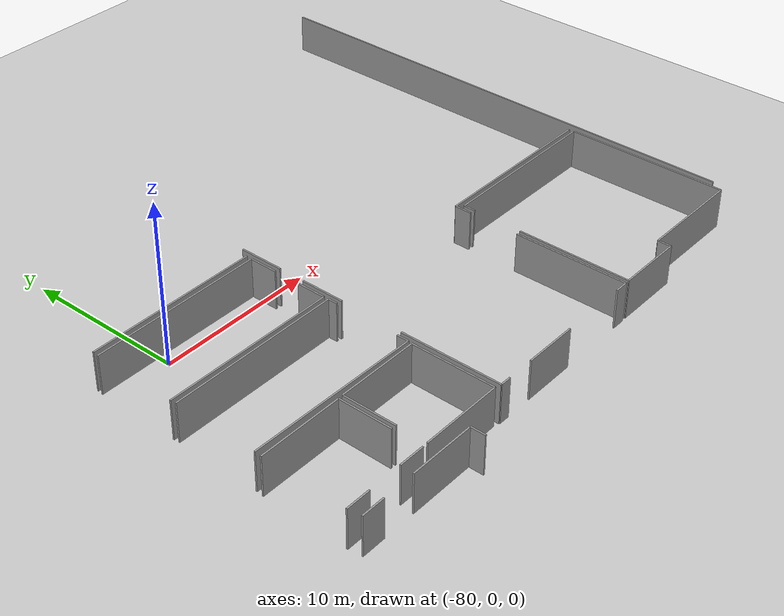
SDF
<sdf version="1.6">
 <world name="default">
  <model name="ground_plane">
   <static>1</static>
   <link name="link">
    <collision name="collision">
     <geometry><plane><normal>0 0 1</normal><size>100 100</size></plane></geometry>
     <surface><friction><ode><mu>100</mu><mu2>50</mu2></ode></friction></surface>
    </collision>
    <visual name="visual">
     <cast_shadows>0</cast_shadows>
     <geometry><plane><normal>0 0 1</normal><size>100 100</size></plane></geometry>
     <material>
      <script><uri>file://media/materials/scripts/gazebo.material</uri><name>Gazebo/Grey</name></script>
     </material>
    </visual>
   </link>
  </model>
  <model name="0510045904_A_40_1_102">
   <static>1</static>
   <link name="Wall_0">
    <collision name="Wall_0_Collision">
     <geometry><box><size>0.837914354996 0.1 2.5</size></box></geometry>
     <pose>0.418957177498 0 1.25 0 0 0</pose>
    </collision>
    <visual name="Wall_0_Visual">
     <pose>0.418957177498 0 1.25 0 0 0</pose>
     <geometry><box><size>0.837914354996 0.1 2.5</size></box></geometry>
     <material>
      <script><uri>file://media/materials/scripts/gazebo.material</uri><name>Gazebo/Grey</name></script>
      <ambient>1 1 1 1</ambient>
     </material>
    </visual>
    <pose>22.6153084414 -78.1271344599 0 0 0 3.14159265359</pose>
   </link>
   <link name="Wall_1">
    <collision name="Wall_1_Collision">
     <geometry><box><size>3.37806441784 0.1 2.5</size></box></geometry>
     <pose>1.68903220892 0 1.25 0 0 0</pose>
    </collision>
    <visual name="Wall_1_Visual">
     <pose>1.68903220892 0 1.25 0 0 0</pose>
     <geometry><box><size>3.37806441784 0.1 2.5</size></box></geometry>
     <material>
      <script><uri>file://media/materials/scripts/gazebo.material</uri><name>Gazebo/Grey</name></script>
      <ambient>1 1 1 1</ambient>
     </material>
    </visual>
    <pose>17.4994604339 -78.1271344599 0 0 0 3.14159265359</pose>
   </link>
   <link name="Wall_2">
    <collision name="Wall_2_Collision">
     <geometry><box><size>0.685566290452 0.1 2.5</size></box></geometry>
     <pose>0.342783145226 0 1.25 0 0 0</pose>
    </collision>
    <visual name="Wall_2_Visual">
     <pose>0.342783145226 0 1.25 0 0 0</pose>
     <geometry><box><size>0.685566290452 0.1 2.5</size></box></geometry>
     <material>
      <script><uri>file://media/materials/scripts/gazebo.material</uri><name>Gazebo/Grey</name></script>
      <ambient>1 1 1 1</ambient>
     </material>
    </visual>
    <pose>12.4079881169 -78.1271344599 0 0 0 3.14159265359</pose>
   </link>
   <link name="Wall_3">
    <collision name="Wall_3_Collision">
     <geometry><box><size>6.29933855549 0.1 2.5</size></box></geometry>
     <pose>3.14966927774 0 1.25 0 0 0</pose>
    </collision>
    <visual name="Wall_3_Visual">
     <pose>3.14966927774 0 1.25 0 0 0</pose>
     <geometry><box><size>6.29933855549 0.1 2.5</size></box></geometry>
     <material>
      <script><uri>file://media/materials/scripts/gazebo.material</uri><name>Gazebo/Grey</name></script>
      <ambient>1 1 1 1</ambient>
     </material>
    </visual>
    <pose>11.7224218264 -78.1271344599 0 0 0 1.57079632679</pose>
   </link>
   <link name="Wall_4">
    <collision name="Wall_4_Collision">
     <geometry><box><size>2.73210862417 0.1 2.5</size></box></geometry>
     <pose>1.36605431209 0 1.25 0 0 0</pose>
    </collision>
    <visual name="Wall_4_Visual">
     <pose>1.36605431209 0 1.25 0 0 0</pose>
     <geometry><box><size>2.73210862417 0.1 2.5</size></box></geometry>
     <material>
      <script><uri>file://media/materials/scripts/gazebo.material</uri><name>Gazebo/Grey</name></script>
      <ambient>1 1 1 1</ambient>
     </material>
    </visual>
    <pose>11.7224218264 -67.818248759 0 0 0 1.57079632679</pose>
   </link>
   <link name="Wall_5">
    <collision name="Wall_5_Collision">
     <geometry><box><size>2.78390696612 0.1 2.5</size></box></geometry>
     <pose>1.39195348306 0 1.25 0 0 0</pose>
    </collision>
    <visual name="Wall_5_Visual">
     <pose>1.39195348306 0 1.25 0 0 0</pose>
     <geometry><box><size>2.78390696612 0.1 2.5</size></box></geometry>
     <material>
      <script><uri>file://media/materials/scripts/gazebo.material</uri><name>Gazebo/Grey</name></script>
      <ambient>1 1 1 1</ambient>
     </material>
    </visual>
    <pose>11.7224218264 -63.4349410286 0 0 0 1.57079632679</pose>
   </link>
   <link name="Wall_15">
    <collision name="Wall_15_Collision">
     <geometry><box><size>11.1368974317 0.1 2.5</size></box></geometry>
     <pose>5.56844871583 0 1.25 0 0 0</pose>
    </collision>
    <visual name="Wall_15_Visual">
     <pose>5.56844871583 0 1.25 0 0 0</pose>
     <geometry><box><size>11.1368974317 0.1 2.5</size></box></geometry>
     <material>
      <script><uri>file://media/materials/scripts/gazebo.material</uri><name>Gazebo/Grey</name></script>
      <ambient>1 1 1 1</ambient>
     </material>
    </visual>
    <pose>33.7011692714 -66.7949775921 0 0 0 3.14159265359</pose>
   </link>
   <link name="Wall_16">
    <collision name="Wall_16_Collision">
     <geometry><box><size>1.05602600074 0.1 2.5</size></box></geometry>
     <pose>0.528013000368 0 1.25 0 0 0</pose>
    </collision>
    <visual name="Wall_16_Visual">
     <pose>0.528013000368 0 1.25 0 0 0</pose>
     <geometry><box><size>1.05602600074 0.1 2.5</size></box></geometry>
     <material>
      <script><uri>file://media/materials/scripts/gazebo.material</uri><name>Gazebo/Grey</name></script>
      <ambient>1 1 1 1</ambient>
     </material>
    </visual>
    <pose>22.5642718397 -66.7949775921 0 0 0 -1.57079632679</pose>
   </link>
   <link name="Wall_17">
    <collision name="Wall_17_Collision">
     <geometry><box><size>7.06761098928 0.1 2.5</size></box></geometry>
     <pose>3.53380549464 0 1.25 0 0 0</pose>
    </collision>
    <visual name="Wall_17_Visual">
     <pose>3.53380549464 0 1.25 0 0 0</pose>
     <geometry><box><size>7.06761098928 0.1 2.5</size></box></geometry>
     <material>
      <script><uri>file://media/materials/scripts/gazebo.material</uri><name>Gazebo/Grey</name></script>
      <ambient>1 1 1 1</ambient>
     </material>
    </visual>
    <pose>22.5642718397 -71.0597077456 0 0 0 -1.5635750684</pose>
   </link>
   <link name="Wall_41">
    <collision name="Wall_41_Collision">
     <geometry><box><size>10.8672413574 0.1 2.5</size></box></geometry>
     <pose>5.43362067871 0 1.25 0 0 0</pose>
    </collision>
    <visual name="Wall_41_Visual">
     <pose>5.43362067871 0 1.25 0 0 0</pose>
     <geometry><box><size>10.8672413574 0.1 2.5</size></box></geometry>
     <material>
      <script><uri>file://media/materials/scripts/gazebo.material</uri><name>Gazebo/Grey</name></script>
      <ambient>1 1 1 1</ambient>
     </material>
    </visual>
    <pose>11.4093465538 -61.2665202432 0 0 0 3.14159265359</pose>
   </link>
   <link name="Wall_45">
    <collision name="Wall_45_Collision">
     <geometry><box><size>1.81040283367 0.1 2.5</size></box></geometry>
     <pose>0.905201416837 0 1.25 0 0 0</pose>
    </collision>
    <visual name="Wall_45_Visual">
     <pose>0.905201416837 0 1.25 0 0 0</pose>
     <geometry><box><size>1.81040283367 0.1 2.5</size></box></geometry>
     <material>
      <script><uri>file://media/materials/scripts/gazebo.material</uri><name>Gazebo/Grey</name></script>
      <ambient>1 1 1 1</ambient>
     </material>
    </visual>
    <pose>11.3834473828 -66.8764838067 0 0 0 1.57079632679</pose>
   </link>
   <link name="Wall_46">
    <collision name="Wall_46_Collision">
     <geometry><box><size>1.76622189496 0.1 2.5</size></box></geometry>
     <pose>0.883110947478 0 1.25 0 0 0</pose>
    </collision>
    <visual name="Wall_46_Visual">
     <pose>0.883110947478 0 1.25 0 0 0</pose>
     <geometry><box><size>1.76622189496 0.1 2.5</size></box></geometry>
     <material>
      <script><uri>file://media/materials/scripts/gazebo.material</uri><name>Gazebo/Grey</name></script>
      <ambient>1 1 1 1</ambient>
     </material>
    </visual>
    <pose>11.3834473828 -63.396600099 0 0 0 1.57079632679</pose>
   </link>
   <link name="Wall_47">
    <collision name="Wall_47_Collision">
     <geometry><box><size>10.8794292026 0.1 2.5</size></box></geometry>
     <pose>5.43971460129 0 1.25 0 0 0</pose>
    </collision>
    <visual name="Wall_47_Visual">
     <pose>5.43971460129 0 1.25 0 0 0</pose>
     <geometry><box><size>10.8794292026 0.1 2.5</size></box></geometry>
     <material>
      <script><uri>file://media/materials/scripts/gazebo.material</uri><name>Gazebo/Grey</name></script>
      <ambient>1 1 1 1</ambient>
     </material>
    </visual>
    <pose>11.3834473828 -61.6303782041 0 0 0 3.14159265359</pose>
   </link>
   <link name="Wall_48">
    <collision name="Wall_48_Collision">
     <geometry><box><size>10.8794994735 0.1 2.5</size></box></geometry>
     <pose>5.43974973673 0 1.25 0 0 0</pose>
    </collision>
    <visual name="Wall_48_Visual">
     <pose>5.43974973673 0 1.25 0 0 0</pose>
     <geometry><box><size>10.8794994735 0.1 2.5</size></box></geometry>
     <material>
      <script><uri>file://media/materials/scripts/gazebo.material</uri><name>Gazebo/Grey</name></script>
      <ambient>1 1 1 1</ambient>
     </material>
    </visual>
    <pose>0.504018180202 -66.8373811368 0 0 0 -0.00359416848024</pose>
   </link>
   <link name="Wall_49">
    <collision name="Wall_49_Collision">
     <geometry><box><size>0.728477661965 0.1 2.5</size></box></geometry>
     <pose>0.364238830983 0 1.25 0 0 0</pose>
    </collision>
    <visual name="Wall_49_Visual">
     <pose>0.364238830983 0 1.25 0 0 0</pose>
     <geometry><box><size>0.728477661965 0.1 2.5</size></box></geometry>
     <material>
      <script><uri>file://media/materials/scripts/gazebo.material</uri><name>Gazebo/Grey</name></script>
      <ambient>1 1 1 1</ambient>
     </material>
    </visual>
    <pose>11.4055378521 -72.5509413841 0 0 0 1.57079632679</pose>
   </link>
   <link name="Wall_50">
    <collision name="Wall_50_Collision">
     <geometry><box><size>0.584000914088 0.1 2.5</size></box></geometry>
     <pose>0.292000457044 0 1.25 0 0 0</pose>
    </collision>
    <visual name="Wall_50_Visual">
     <pose>0.292000457044 0 1.25 0 0 0</pose>
     <geometry><box><size>0.584000914088 0.1 2.5</size></box></geometry>
     <material>
      <script><uri>file://media/materials/scripts/gazebo.material</uri><name>Gazebo/Grey</name></script>
      <ambient>1 1 1 1</ambient>
     </material>
    </visual>
    <pose>11.4055378521 -67.7674660708 0 0 0 1.57079632679</pose>
   </link>
   <link name="Wall_51">
    <collision name="Wall_51_Collision">
     <geometry><box><size>10.8629248289 0.1 2.5</size></box></geometry>
     <pose>5.43146241446 0 1.25 0 0 0</pose>
    </collision>
    <visual name="Wall_51_Visual">
     <pose>5.43146241446 0 1.25 0 0 0</pose>
     <geometry><box><size>10.8629248289 0.1 2.5</size></box></geometry>
     <material>
      <script><uri>file://media/materials/scripts/gazebo.material</uri><name>Gazebo/Grey</name></script>
      <ambient>1 1 1 1</ambient>
     </material>
    </visual>
    <pose>11.4055378521 -67.1834651567 0 0 0 3.14159265359</pose>
   </link>
   <link name="Wall_52">
    <collision name="Wall_52_Collision">
     <geometry><box><size>10.8639577758 0.1 2.5</size></box></geometry>
     <pose>5.4319788879 0 1.25 0 0 0</pose>
    </collision>
    <visual name="Wall_52_Visual">
     <pose>5.4319788879 0 1.25 0 0 0</pose>
     <geometry><box><size>10.8639577758 0.1 2.5</size></box></geometry>
     <material>
      <script><uri>file://media/materials/scripts/gazebo.material</uri><name>Gazebo/Grey</name></script>
      <ambient>1 1 1 1</ambient>
     </material>
    </visual>
    <pose>0.54261302322 -72.4011324539 0 0 0 -0.0137899724355</pose>
   </link>
   <link name="Wall_53">
    <collision name="Wall_53_Collision">
     <geometry><box><size>6.68681046631 0.1 2.5</size></box></geometry>
     <pose>3.34340523316 0 1.25 0 0 0</pose>
    </collision>
    <visual name="Wall_53_Visual">
     <pose>3.34340523316 0 1.25 0 0 0</pose>
     <geometry><box><size>6.68681046631 0.1 2.5</size></box></geometry>
     <material>
      <script><uri>file://media/materials/scripts/gazebo.material</uri><name>Gazebo/Grey</name></script>
      <ambient>1 1 1 1</ambient>
     </material>
    </visual>
    <pose>33.7595693628 -77.2930288065 0 0 0 3.14159265359</pose>
   </link>
   <link name="Wall_54">
    <collision name="Wall_54_Collision">
     <geometry><box><size>0.817601279724 0.1 2.5</size></box></geometry>
     <pose>0.408800639862 0 1.25 0 0 0</pose>
    </collision>
    <visual name="Wall_54_Visual">
     <pose>0.408800639862 0 1.25 0 0 0</pose>
     <geometry><box><size>0.817601279724 0.1 2.5</size></box></geometry>
     <material>
      <script><uri>file://media/materials/scripts/gazebo.material</uri><name>Gazebo/Grey</name></script>
      <ambient>1 1 1 1</ambient>
     </material>
    </visual>
    <pose>27.0727588965 -77.2930288065 0 0 0 -1.57079632679</pose>
   </link>
   <link name="Wall_55">
    <collision name="Wall_55_Collision">
     <geometry><box><size>4.17560653573 0.1 2.5</size></box></geometry>
     <pose>2.08780326787 0 1.25 0 0 0</pose>
    </collision>
    <visual name="Wall_55_Visual">
     <pose>2.08780326787 0 1.25 0 0 0</pose>
     <geometry><box><size>4.17560653573 0.1 2.5</size></box></geometry>
     <material>
      <script><uri>file://media/materials/scripts/gazebo.material</uri><name>Gazebo/Grey</name></script>
      <ambient>1 1 1 1</ambient>
     </material>
    </visual>
    <pose>27.0727588965 -78.1106300862 0 0 0 3.14159265359</pose>
   </link>
   <link name="Wall_56">
    <collision name="Wall_56_Collision">
     <geometry><box><size>7.09561110617 0.1 2.5</size></box></geometry>
     <pose>3.54780555309 0 1.25 0 0 0</pose>
    </collision>
    <visual name="Wall_56_Visual">
     <pose>3.54780555309 0 1.25 0 0 0</pose>
     <geometry><box><size>7.09561110617 0.1 2.5</size></box></geometry>
     <material>
      <script><uri>file://media/materials/scripts/gazebo.material</uri><name>Gazebo/Grey</name></script>
      <ambient>1 1 1 1</ambient>
     </material>
    </visual>
    <pose>22.8971523608 -78.1106300862 0 0 0 1.57079632679</pose>
   </link>
   <link name="Wall_57">
    <collision name="Wall_57_Collision">
     <geometry><box><size>0.736348978633 0.1 2.5</size></box></geometry>
     <pose>0.368174489317 0 1.25 0 0 0</pose>
    </collision>
    <visual name="Wall_57_Visual">
     <pose>0.368174489317 0 1.25 0 0 0</pose>
     <geometry><box><size>0.736348978633 0.1 2.5</size></box></geometry>
     <material>
      <script><uri>file://media/materials/scripts/gazebo.material</uri><name>Gazebo/Grey</name></script>
      <ambient>1 1 1 1</ambient>
     </material>
    </visual>
    <pose>22.8971523608 -67.8690314472 0 0 0 1.57079632679</pose>
   </link>
   <link name="Wall_58">
    <collision name="Wall_58_Collision">
     <geometry><box><size>10.8141734483 0.1 2.5</size></box></geometry>
     <pose>5.40708672414 0 1.25 0 0 0</pose>
    </collision>
    <visual name="Wall_58_Visual">
     <pose>5.40708672414 0 1.25 0 0 0</pose>
     <geometry><box><size>10.8141734483 0.1 2.5</size></box></geometry>
     <material>
      <script><uri>file://media/materials/scripts/gazebo.material</uri><name>Gazebo/Grey</name></script>
      <ambient>1 1 1 1</ambient>
     </material>
    </visual>
    <pose>22.8971523608 -67.1326824685 0 0 0 0.0</pose>
   </link>
   <link name="Wall_59">
    <collision name="Wall_59_Collision">
     <geometry><box><size>10.1604608728 0.1 2.5</size></box></geometry>
     <pose>5.08023043639 0 1.25 0 0 0</pose>
    </collision>
    <visual name="Wall_59_Visual">
     <pose>5.08023043639 0 1.25 0 0 0</pose>
     <geometry><box><size>10.1604608728 0.1 2.5</size></box></geometry>
     <material>
      <script><uri>file://media/materials/scripts/gazebo.material</uri><name>Gazebo/Grey</name></script>
      <ambient>1 1 1 1</ambient>
     </material>
    </visual>
    <pose>33.711325809 -67.1326824685 0 0 0 -1.56604814306</pose>
   </link>
   <link name="Wall_67">
    <collision name="Wall_67_Collision">
     <geometry><box><size>32.3056610002 0.1 2.5</size></box></geometry>
     <pose>16.1528305001 0 1.25 0 0 0</pose>
    </collision>
    <visual name="Wall_67_Visual">
     <pose>16.1528305001 0 1.25 0 0 0</pose>
     <geometry><box><size>32.3056610002 0.1 2.5</size></box></geometry>
     <material>
      <script><uri>file://media/materials/scripts/gazebo.material</uri><name>Gazebo/Grey</name></script>
      <ambient>1 1 1 1</ambient>
     </material>
    </visual>
    <pose>34.2183909505 -76.5099597547 0 0 0 1.57079632679</pose>
   </link>
   <link name="Wall_109">
    <collision name="Wall_109_Collision">
     <geometry><box><size>1.55521982556 0.1 2.5</size></box></geometry>
     <pose>0.777609912781 0 1.25 0 0 0</pose>
    </collision>
    <visual name="Wall_109_Visual">
     <pose>0.777609912781 0 1.25 0 0 0</pose>
     <geometry><box><size>1.55521982556 0.1 2.5</size></box></geometry>
     <material>
      <script><uri>file://media/materials/scripts/gazebo.material</uri><name>Gazebo/Grey</name></script>
      <ambient>1 1 1 1</ambient>
     </material>
    </visual>
    <pose>0.523315601711 -78.0458821588 0 0 0 0.0</pose>
   </link>
   <link name="Wall_110">
    <collision name="Wall_110_Collision">
     <geometry><box><size>1.63190168472 0.1 2.5</size></box></geometry>
     <pose>0.815950842358 0 1.25 0 0 0</pose>
    </collision>
    <visual name="Wall_110_Visual">
     <pose>0.815950842358 0 1.25 0 0 0</pose>
     <geometry><box><size>1.63190168472 0.1 2.5</size></box></geometry>
     <material>
      <script><uri>file://media/materials/scripts/gazebo.material</uri><name>Gazebo/Grey</name></script>
      <ambient>1 1 1 1</ambient>
     </material>
    </visual>
    <pose>4.20963093681 -78.0458821588 0 0 0 0.0</pose>
   </link>
   <link name="Wall_111">
    <collision name="Wall_111_Collision">
     <geometry><box><size>3.33388347912 0.1 2.5</size></box></geometry>
     <pose>1.66694173956 0 1.25 0 0 0</pose>
    </collision>
    <visual name="Wall_111_Visual">
     <pose>1.66694173956 0 1.25 0 0 0</pose>
     <geometry><box><size>3.33388347912 0.1 2.5</size></box></geometry>
     <material>
      <script><uri>file://media/materials/scripts/gazebo.material</uri><name>Gazebo/Grey</name></script>
      <ambient>1 1 1 1</ambient>
     </material>
    </visual>
    <pose>5.84153262153 -76.1720009649 0 0 0 1.57079632679</pose>
   </link>
   <link name="Wall_112">
    <collision name="Wall_112_Collision">
     <geometry><box><size>5.34310053703 0.1 2.5</size></box></geometry>
     <pose>2.67155026851 0 1.25 0 0 0</pose>
    </collision>
    <visual name="Wall_112_Visual">
     <pose>2.67155026851 0 1.25 0 0 0</pose>
     <geometry><box><size>5.34310053703 0.1 2.5</size></box></geometry>
     <material>
      <script><uri>file://media/materials/scripts/gazebo.material</uri><name>Gazebo/Grey</name></script>
      <ambient>1 1 1 1</ambient>
     </material>
    </visual>
    <pose>5.84153262153 -72.8381174857 0 0 0 3.14159265359</pose>
   </link>
   <link name="Wall_113">
    <collision name="Wall_113_Collision">
     <geometry><box><size>5.19608465474 0.1 2.5</size></box></geometry>
     <pose>2.59804232737 0 1.25 0 0 0</pose>
    </collision>
    <visual name="Wall_113_Visual">
     <pose>2.59804232737 0 1.25 0 0 0</pose>
     <geometry><box><size>5.19608465474 0.1 2.5</size></box></geometry>
     <material>
      <script><uri>file://media/materials/scripts/gazebo.material</uri><name>Gazebo/Grey</name></script>
      <ambient>1 1 1 1</ambient>
     </material>
    </visual>
    <pose>11.361103 -78.0121116711 0 0 0 1.57079632679</pose>
   </link>
   <link name="Wall_114">
    <collision name="Wall_114_Collision">
     <geometry><box><size>5.21030380743 0.1 2.5</size></box></geometry>
     <pose>2.60515190372 0 1.25 0 0 0</pose>
    </collision>
    <visual name="Wall_114_Visual">
     <pose>2.60515190372 0 1.25 0 0 0</pose>
     <geometry><box><size>5.21030380743 0.1 2.5</size></box></geometry>
     <material>
      <script><uri>file://media/materials/scripts/gazebo.material</uri><name>Gazebo/Grey</name></script>
      <ambient>1 1 1 1</ambient>
     </material>
    </visual>
    <pose>11.361103 -72.8160270164 0 0 0 3.14159265359</pose>
   </link>
   <link name="Wall_115">
    <collision name="Wall_115_Collision">
     <geometry><box><size>3.36079830386 0.1 2.5</size></box></geometry>
     <pose>1.68039915193 0 1.25 0 0 0</pose>
    </collision>
    <visual name="Wall_115_Visual">
     <pose>1.68039915193 0 1.25 0 0 0</pose>
     <geometry><box><size>3.36079830386 0.1 2.5</size></box></geometry>
     <material>
      <script><uri>file://media/materials/scripts/gazebo.material</uri><name>Gazebo/Grey</name></script>
      <ambient>1 1 1 1</ambient>
     </material>
    </visual>
    <pose>6.15079919256 -72.8160270164 0 0 0 -1.57079632679</pose>
   </link>
   <link name="Wall_116">
    <collision name="Wall_116_Collision">
     <geometry><box><size>5.21036444562 0.1 2.5</size></box></geometry>
     <pose>2.60518222281 0 1.25 0 0 0</pose>
    </collision>
    <visual name="Wall_116_Visual">
     <pose>2.60518222281 0 1.25 0 0 0</pose>
     <geometry><box><size>5.21036444562 0.1 2.5</size></box></geometry>
     <material>
      <script><uri>file://media/materials/scripts/gazebo.material</uri><name>Gazebo/Grey</name></script>
      <ambient>1 1 1 1</ambient>
     </material>
    </visual>
    <pose>6.15079919256 -78.0372491018 0 0 0 0.00482452397124</pose>
   </link>
   <link name="Wall_118">
    <collision name="Wall_118_Collision">
     <geometry><box><size>1.47828405297 0.1 2.5</size></box></geometry>
     <pose>0.739142026483 0 1.25 0 0 0</pose>
    </collision>
    <visual name="Wall_118_Visual">
     <pose>0.739142026483 0 1.25 0 0 0</pose>
     <geometry><box><size>1.47828405297 0.1 2.5</size></box></geometry>
     <material>
      <script><uri>file://media/materials/scripts/gazebo.material</uri><name>Gazebo/Grey</name></script>
      <ambient>1 1 1 1</ambient>
     </material>
    </visual>
    <pose>0.638592303884 -78.8523112471 0 0 0 0.0</pose>
   </link>
   <link name="Wall_119">
    <collision name="Wall_119_Collision">
     <geometry><box><size>4.17408305509 0.1 2.5</size></box></geometry>
     <pose>2.08704152754 0 1.25 0 0 0</pose>
    </collision>
    <visual name="Wall_119_Visual">
     <pose>2.08704152754 0 1.25 0 0 0</pose>
     <geometry><box><size>4.17408305509 0.1 2.5</size></box></geometry>
     <material>
      <script><uri>file://media/materials/scripts/gazebo.material</uri><name>Gazebo/Grey</name></script>
      <ambient>1 1 1 1</ambient>
     </material>
    </visual>
    <pose>4.1624030368 -78.8523112471 0 0 0 0.0</pose>
   </link>
   <link name="Wall_120">
    <collision name="Wall_120_Collision">
     <geometry><box><size>0.918658829205 0.1 2.5</size></box></geometry>
     <pose>0.459329414603 0 1.25 0 0 0</pose>
    </collision>
    <visual name="Wall_120_Visual">
     <pose>0.459329414603 0 1.25 0 0 0</pose>
     <geometry><box><size>0.918658829205 0.1 2.5</size></box></geometry>
     <material>
      <script><uri>file://media/materials/scripts/gazebo.material</uri><name>Gazebo/Grey</name></script>
      <ambient>1 1 1 1</ambient>
     </material>
    </visual>
    <pose>8.33648609189 -78.8523112471 0 0 0 -1.57079632679</pose>
   </link>
   <pose>-84.3 62.4479902751 0 0 0 0</pose>
  </model>
 </world>
</sdf>
